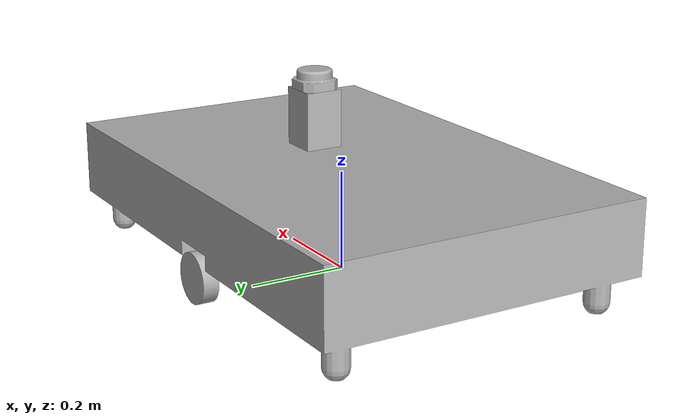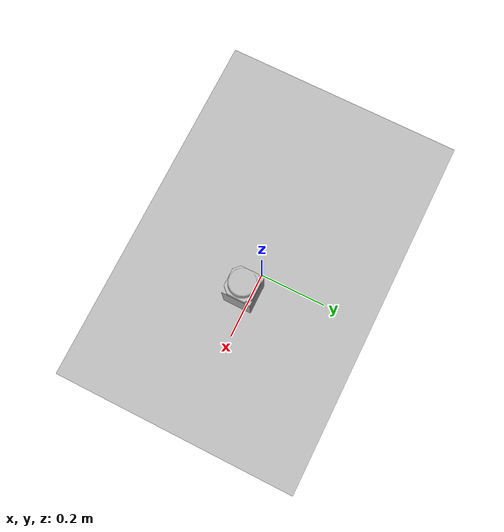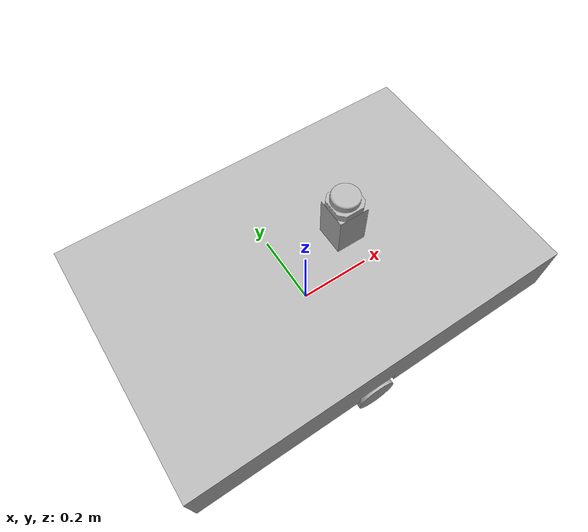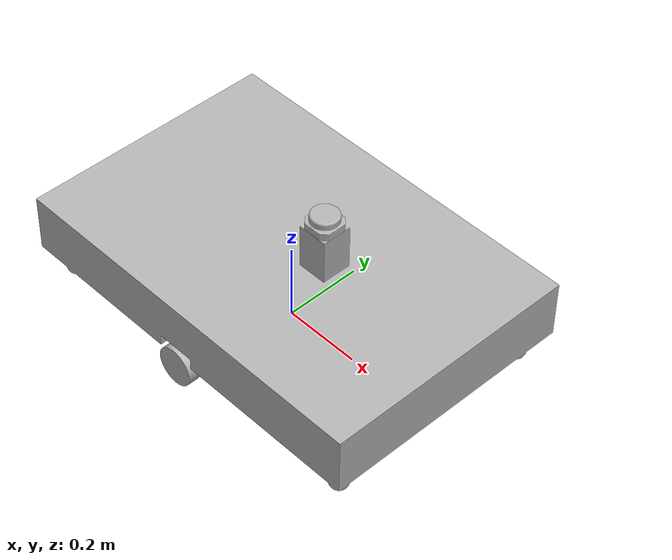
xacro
<?xml version="1.0" ?>
<robot name="tansam_amr2" xmlns:xacro="http://www.ros.org/wiki/xacro">

<xacro:include filename="$(find tansam_amr2_description)/urdf/materials.xacro" />
<xacro:include filename="$(find tansam_amr2_description)/urdf/tansam_amr2.trans" />
<xacro:include filename="$(find tansam_amr2_description)/urdf/tansam_amr2.gazebo" />
<link name="base_link">
  <inertial>
    <origin xyz="0.0006517442981175278 -1.382042401027964e-16 0.15484952545265696" rpy="0 0 0"/>
    <mass value="793.4867488827044"/>
    <inertia ixx="30.792904" iyy="67.474107" izz="94.937192" ixy="-0.0" iyz="-0.0" ixz="-0.083049"/>
  </inertial>
  <visual>
    <origin xyz="0 0 0" rpy="0 0 0"/>
    <geometry>
      <mesh filename="package://tansam_amr2_description/meshes/base_link.stl" scale="0.001 0.001 0.001"/>
    </geometry>
    <material name="silver"/>
  </visual>
  <collision>
    <origin xyz="0 0 0" rpy="0 0 0"/>
    <geometry>
      <mesh filename="package://tansam_amr2_description/meshes/base_link.stl" scale="0.001 0.001 0.001"/>
    </geometry>
  </collision>
</link>

<link name="right_wheel_1">
  <inertial>
    <origin xyz="1.8492152253912764e-15 -0.10489130114225886 0.0" rpy="0 0 0"/>
    <mass value="2.2421471871138"/>
    <inertia ixx="0.00292" iyy="0.002491" izz="0.00292" ixy="-0.0" iyz="-0.0" ixz="0.0"/>
  </inertial>
  <visual>
    <origin xyz="0.01925 0.2067 -0.05" rpy="0 0 0"/>
    <geometry>
      <mesh filename="package://tansam_amr2_description/meshes/right_wheel_1.stl" scale="0.001 0.001 0.001"/>
    </geometry>
    <material name="silver"/>
  </visual>
  <collision>
    <origin xyz="0.01925 0.2067 -0.05" rpy="0 0 0"/>
    <geometry>
      <mesh filename="package://tansam_amr2_description/meshes/right_wheel_1.stl" scale="0.001 0.001 0.001"/>
    </geometry>
  </collision>
</link>

<link name="left_wheel_1">
  <inertial>
    <origin xyz="1.863093013199091e-15 0.10489130114225903 1.3877787807814457e-16" rpy="0 0 0"/>
    <mass value="2.2421471871137997"/>
    <inertia ixx="0.00292" iyy="0.002491" izz="0.00292" ixy="0.0" iyz="0.0" ixz="-0.0"/>
  </inertial>
  <visual>
    <origin xyz="0.01925 -0.2067 -0.05" rpy="0 0 0"/>
    <geometry>
      <mesh filename="package://tansam_amr2_description/meshes/left_wheel_1.stl" scale="0.001 0.001 0.001"/>
    </geometry>
    <material name="silver"/>
  </visual>
  <collision>
    <origin xyz="0.01925 -0.2067 -0.05" rpy="0 0 0"/>
    <geometry>
      <mesh filename="package://tansam_amr2_description/meshes/left_wheel_1.stl" scale="0.001 0.001 0.001"/>
    </geometry>
  </collision>
</link>

<link name="lidar_1">
  <inertial>
    <origin xyz="1.6653345369377348e-16 2.5216763657397544e-17 0.017661701829302323" rpy="0 0 0"/>
    <mass value="1.4156323757317377"/>
    <inertia ixx="0.000716" iyy="0.000716" izz="0.001087" ixy="0.0" iyz="0.0" ixz="0.0"/>
  </inertial>
  <visual>
    <origin xyz="-0.10525 -0.0 -0.3465" rpy="0 0 0"/>
    <geometry>
      <mesh filename="package://tansam_amr2_description/meshes/lidar_1.stl" scale="0.001 0.001 0.001"/>
    </geometry>
    <material name="silver"/>
  </visual>
  <collision>
    <origin xyz="-0.10525 -0.0 -0.3465" rpy="0 0 0"/>
    <geometry>
      <mesh filename="package://tansam_amr2_description/meshes/lidar_1.stl" scale="0.001 0.001 0.001"/>
    </geometry>
  </collision>
</link>

<joint name="Revolute_right" type="continuous">
  <origin xyz="-0.01925 -0.2067 0.05" rpy="0 0 0"/>
  <parent link="base_link"/>
  <child link="right_wheel_1"/>
  <axis xyz="0.0 1.0 0.0"/>
</joint>

<joint name="Revolute_left" type="continuous">
  <origin xyz="-0.01925 0.2067 0.05" rpy="0 0 0"/>
  <parent link="base_link"/>
  <child link="left_wheel_1"/>
  <axis xyz="0.0 1.0 0.0"/>
</joint>

<joint name="lidar_joint" type="fixed">
  <origin xyz="0.10525 0.0 0.3465" rpy="0 0 3.1416"/>
  <parent link="base_link"/>
  <child link="lidar_1"/>
</joint>

</robot>

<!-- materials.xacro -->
<robot name="tansam_amr2" xmlns:xacro="http://www.ros.org/wiki/xacro" >

<material name="silver">
  <color rgba="0.700 0.700 0.700 1.000"/>
</material>

</robot>

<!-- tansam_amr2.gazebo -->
<robot name="tansam_amr2" xmlns:xacro="http://www.ros.org/wiki/xacro" >

<xacro:property name="body_color" value="Gazebo/Silver" />

<gazebo>
  <plugin name="control" filename="libgazebo_ros_control.so"/>
</gazebo>
<gazebo reference="base_link">
  <material>${body_color}</material>
  <mu1>0.2</mu1>
  <mu2>0.2</mu2>
  <selfCollide>true</selfCollide>
  <gravity>true</gravity>
</gazebo>

<gazebo reference="right_wheel_1">
  <material>${body_color}</material>
  <mu1>0.2</mu1>
  <mu2>0.2</mu2>
  <selfCollide>true</selfCollide>
</gazebo>

<gazebo reference="left_wheel_1">
  <material>${body_color}</material>
  <mu1>0.2</mu1>
  <mu2>0.2</mu2>
  <selfCollide>true</selfCollide>
</gazebo>

<gazebo reference="lidar_1">
  <material>${body_color}</material>
  <mu1>0.2</mu1>
  <mu2>0.2</mu2>
  <selfCollide>true</selfCollide>
</gazebo>

</robot>
